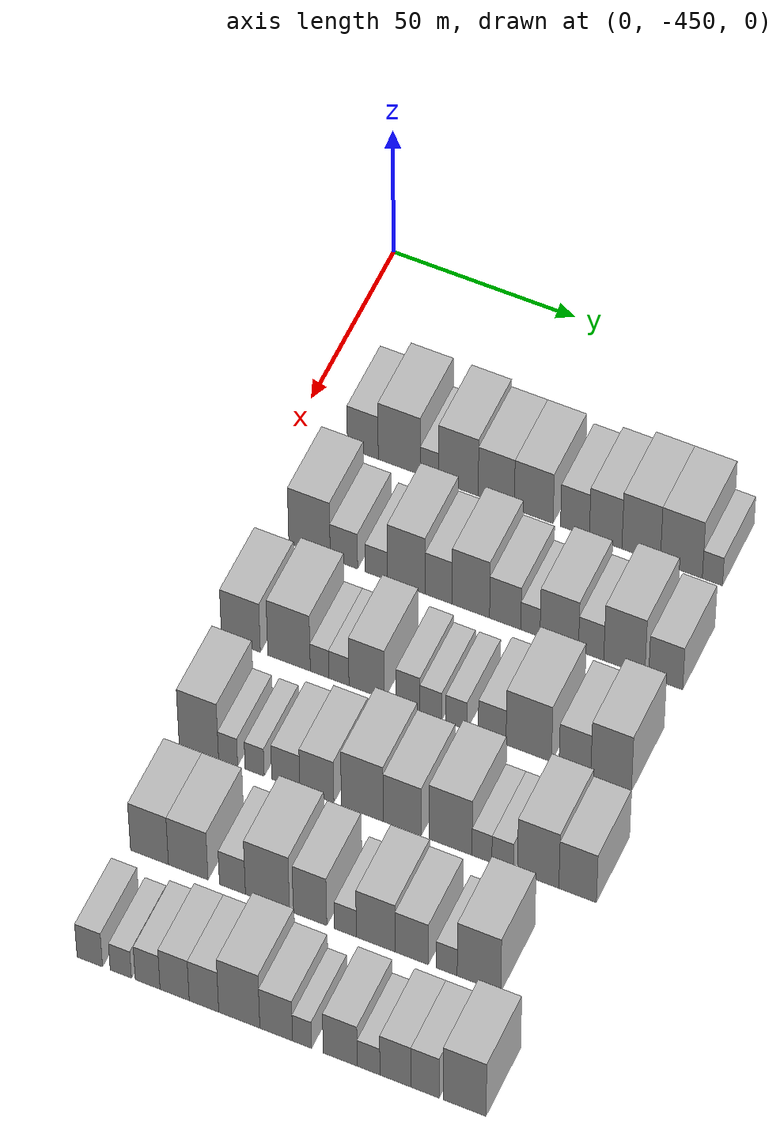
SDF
<sdf version="1.6">
 <world name="default">
  <model name="building_11">
   <static>1</static>
   <pose>50.0000 -431.3317 0 0.000000 0.000000 0.000000</pose>
   <link name="link">
    <pose>0 0 9.00 0 0 0</pose>
    <collision name="collision"><geometry><box><size>20.0000 8.3776 18.0000</size></box></geometry></collision>
    <visual name="visual">
     <cast_shadows>0</cast_shadows>
     <geometry><box><size>20.0000 8.3776 18.0000</size></box></geometry>
     <material>
      <script>
       <uri>model://HANNAS_wall/materials/scripts</uri>
       <uri>model://HANNAS_wall/materials/textures</uri>
       <name>vrc/HANNAS_wall</name>
      </script>
     </material>
    </visual>
   </link>
  </model>
  <model name="building_12">
   <static>1</static>
   <pose>50.0000 -421.4305 0 0.000000 0.000000 0.000000</pose>
   <link name="link">
    <pose>0 0 12.00 0 0 0</pose>
    <collision name="collision"><geometry><box><size>20.0000 11.4246 24.0000</size></box></geometry></collision>
    <visual name="visual">
     <cast_shadows>0</cast_shadows>
     <geometry><box><size>20.0000 11.4246 24.0000</size></box></geometry>
     <material>
      <script>
       <uri>model://HANNAS_wall/materials/scripts</uri>
       <uri>model://HANNAS_wall/materials/textures</uri>
       <name>vrc/HANNAS_wall</name>
      </script>
     </material>
    </visual>
   </link>
  </model>
  <model name="building_13">
   <static>1</static>
   <pose>50.0000 -413.2633 0 0.000000 0.000000 0.000000</pose>
   <link name="link">
    <pose>0 0 6.00 0 0 0</pose>
    <collision name="collision"><geometry><box><size>20.0000 4.9098 12.0000</size></box></geometry></collision>
    <visual name="visual">
     <cast_shadows>0</cast_shadows>
     <geometry><box><size>20.0000 4.9098 12.0000</size></box></geometry>
     <material>
      <script>
       <uri>model://HANNAS_wall/materials/scripts</uri>
       <uri>model://HANNAS_wall/materials/textures</uri>
       <name>vrc/HANNAS_wall</name>
      </script>
     </material>
    </visual>
   </link>
  </model>
  <model name="building_14">
   <static>1</static>
   <pose>50.0000 -405.4306 0 0.000000 0.000000 0.000000</pose>
   <link name="link">
    <pose>0 0 12.00 0 0 0</pose>
    <collision name="collision"><geometry><box><size>20.0000 10.7557 24.0000</size></box></geometry></collision>
    <visual name="visual">
     <cast_shadows>0</cast_shadows>
     <geometry><box><size>20.0000 10.7557 24.0000</size></box></geometry>
     <material>
      <script>
       <uri>model://HANNAS_wall/materials/scripts</uri>
       <uri>model://HANNAS_wall/materials/textures</uri>
       <name>vrc/HANNAS_wall</name>
      </script>
     </material>
    </visual>
   </link>
  </model>
  <model name="building_15">
   <static>1</static>
   <pose>50.0000 -395.1952 0 0.000000 0.000000 0.000000</pose>
   <link name="link">
    <pose>0 0 10.50 0 0 0</pose>
    <collision name="collision"><geometry><box><size>20.0000 9.7150 21.0000</size></box></geometry></collision>
    <visual name="visual">
     <cast_shadows>0</cast_shadows>
     <geometry><box><size>20.0000 9.7150 21.0000</size></box></geometry>
     <material>
      <script>
       <uri>model://HANNAS_wall/materials/scripts</uri>
       <uri>model://HANNAS_wall/materials/textures</uri>
       <name>vrc/HANNAS_wall</name>
      </script>
     </material>
    </visual>
   </link>
  </model>
  <model name="building_16">
   <static>1</static>
   <pose>50.0000 -385.1190 0 0.000000 0.000000 0.000000</pose>
   <link name="link">
    <pose>0 0 10.50 0 0 0</pose>
    <collision name="collision"><geometry><box><size>20.0000 10.4373 21.0000</size></box></geometry></collision>
    <visual name="visual">
     <cast_shadows>0</cast_shadows>
     <geometry><box><size>20.0000 10.4373 21.0000</size></box></geometry>
     <material>
      <script>
       <uri>model://HANNAS_wall/materials/scripts</uri>
       <uri>model://HANNAS_wall/materials/textures</uri>
       <name>vrc/HANNAS_wall</name>
      </script>
     </material>
    </visual>
   </link>
  </model>
  <model name="building_17">
   <static>1</static>
   <pose>50.0000 -374.0400 0 0.000000 0.000000 0.000000</pose>
   <link name="link">
    <pose>0 0 9.00 0 0 0</pose>
    <collision name="collision"><geometry><box><size>20.0000 7.7208 18.0000</size></box></geometry></collision>
    <visual name="visual">
     <cast_shadows>0</cast_shadows>
     <geometry><box><size>20.0000 7.7208 18.0000</size></box></geometry>
     <material>
      <script>
       <uri>model://HANNAS_wall/materials/scripts</uri>
       <uri>model://HANNAS_wall/materials/textures</uri>
       <name>vrc/HANNAS_wall</name>
      </script>
     </material>
    </visual>
   </link>
  </model>
  <model name="building_18">
   <static>1</static>
   <pose>50.0000 -365.8259 0 0.000000 0.000000 0.000000</pose>
   <link name="link">
    <pose>0 0 10.50 0 0 0</pose>
    <collision name="collision"><geometry><box><size>20.0000 8.7074 21.0000</size></box></geometry></collision>
    <visual name="visual">
     <cast_shadows>0</cast_shadows>
     <geometry><box><size>20.0000 8.7074 21.0000</size></box></geometry>
     <material>
      <script>
       <uri>model://HANNAS_wall/materials/scripts</uri>
       <uri>model://HANNAS_wall/materials/textures</uri>
       <name>vrc/HANNAS_wall</name>
      </script>
     </material>
    </visual>
   </link>
  </model>
  <model name="building_19">
   <static>1</static>
   <pose>50.0000 -356.3437 0 0.000000 0.000000 0.000000</pose>
   <link name="link">
    <pose>0 0 12.00 0 0 0</pose>
    <collision name="collision"><geometry><box><size>20.0000 10.2568 24.0000</size></box></geometry></collision>
    <visual name="visual">
     <cast_shadows>0</cast_shadows>
     <geometry><box><size>20.0000 10.2568 24.0000</size></box></geometry>
     <material>
      <script>
       <uri>model://HANNAS_wall/materials/scripts</uri>
       <uri>model://HANNAS_wall/materials/textures</uri>
       <name>vrc/HANNAS_wall</name>
      </script>
     </material>
    </visual>
   </link>
  </model>
  <model name="building_20">
   <static>1</static>
   <pose>50.0000 -345.6177 0 0.000000 0.000000 0.000000</pose>
   <link name="link">
    <pose>0 0 12.00 0 0 0</pose>
    <collision name="collision"><geometry><box><size>20.0000 11.1952 24.0000</size></box></geometry></collision>
    <visual name="visual">
     <cast_shadows>0</cast_shadows>
     <geometry><box><size>20.0000 11.1952 24.0000</size></box></geometry>
     <material>
      <script>
       <uri>model://HANNAS_wall/materials/scripts</uri>
       <uri>model://HANNAS_wall/materials/textures</uri>
       <name>vrc/HANNAS_wall</name>
      </script>
     </material>
    </visual>
   </link>
  </model>
  <model name="building_21">
   <static>1</static>
   <pose>50.0000 -337.3342 0 0.000000 0.000000 0.000000</pose>
   <link name="link">
    <pose>0 0 6.00 0 0 0</pose>
    <collision name="collision"><geometry><box><size>20.0000 5.3718 12.0000</size></box></geometry></collision>
    <visual name="visual">
     <cast_shadows>0</cast_shadows>
     <geometry><box><size>20.0000 5.3718 12.0000</size></box></geometry>
     <material>
      <script>
       <uri>model://HANNAS_wall/materials/scripts</uri>
       <uri>model://HANNAS_wall/materials/textures</uri>
       <name>vrc/HANNAS_wall</name>
      </script>
     </material>
    </visual>
   </link>
  </model>
  <model name="building_129">
   <static>1</static>
   <pose>82.0000 -431.1673 0 0.000000 0.000000 0.000000</pose>
   <link name="link">
    <pose>0 0 12.00 0 0 0</pose>
    <collision name="collision"><geometry><box><size>20.0000 11.1755 24.0000</size></box></geometry></collision>
    <visual name="visual">
     <cast_shadows>0</cast_shadows>
     <geometry><box><size>20.0000 11.1755 24.0000</size></box></geometry>
     <material>
      <script>
       <uri>model://HANNAS_wall/materials/scripts</uri>
       <uri>model://HANNAS_wall/materials/textures</uri>
       <name>vrc/HANNAS_wall</name>
      </script>
     </material>
    </visual>
   </link>
  </model>
  <model name="building_130">
   <static>1</static>
   <pose>82.0000 -421.8886 0 0.000000 0.000000 0.000000</pose>
   <link name="link">
    <pose>0 0 7.50 0 0 0</pose>
    <collision name="collision"><geometry><box><size>20.0000 7.3818 15.0000</size></box></geometry></collision>
    <visual name="visual">
     <cast_shadows>0</cast_shadows>
     <geometry><box><size>20.0000 7.3818 15.0000</size></box></geometry>
     <material>
      <script>
       <uri>model://HANNAS_wall/materials/scripts</uri>
       <uri>model://HANNAS_wall/materials/textures</uri>
       <name>vrc/HANNAS_wall</name>
      </script>
     </material>
    </visual>
   </link>
  </model>
  <model name="building_131">
   <static>1</static>
   <pose>82.0000 -413.1989 0 0.000000 0.000000 0.000000</pose>
   <link name="link">
    <pose>0 0 6.00 0 0 0</pose>
    <collision name="collision"><geometry><box><size>20.0000 5.9976 12.0000</size></box></geometry></collision>
    <visual name="visual">
     <cast_shadows>0</cast_shadows>
     <geometry><box><size>20.0000 5.9976 12.0000</size></box></geometry>
     <material>
      <script>
       <uri>model://HANNAS_wall/materials/scripts</uri>
       <uri>model://HANNAS_wall/materials/textures</uri>
       <name>vrc/HANNAS_wall</name>
      </script>
     </material>
    </visual>
   </link>
  </model>
  <model name="building_132">
   <static>1</static>
   <pose>82.0000 -405.1424 0 0.000000 0.000000 0.000000</pose>
   <link name="link">
    <pose>0 0 12.00 0 0 0</pose>
    <collision name="collision"><geometry><box><size>20.0000 10.1153 24.0000</size></box></geometry></collision>
    <visual name="visual">
     <cast_shadows>0</cast_shadows>
     <geometry><box><size>20.0000 10.1153 24.0000</size></box></geometry>
     <material>
      <script>
       <uri>model://HANNAS_wall/materials/scripts</uri>
       <uri>model://HANNAS_wall/materials/textures</uri>
       <name>vrc/HANNAS_wall</name>
      </script>
     </material>
    </visual>
   </link>
  </model>
  <model name="building_133">
   <static>1</static>
   <pose>82.0000 -396.4751 0 0.000000 0.000000 0.000000</pose>
   <link name="link">
    <pose>0 0 9.00 0 0 0</pose>
    <collision name="collision"><geometry><box><size>20.0000 7.2193 18.0000</size></box></geometry></collision>
    <visual name="visual">
     <cast_shadows>0</cast_shadows>
     <geometry><box><size>20.0000 7.2193 18.0000</size></box></geometry>
     <material>
      <script>
       <uri>model://HANNAS_wall/materials/scripts</uri>
       <uri>model://HANNAS_wall/materials/textures</uri>
       <name>vrc/HANNAS_wall</name>
      </script>
     </material>
    </visual>
   </link>
  </model>
  <model name="building_134">
   <static>1</static>
   <pose>82.0000 -387.8564 0 0.000000 0.000000 0.000000</pose>
   <link name="link">
    <pose>0 0 12.00 0 0 0</pose>
    <collision name="collision"><geometry><box><size>20.0000 10.0181 24.0000</size></box></geometry></collision>
    <visual name="visual">
     <cast_shadows>0</cast_shadows>
     <geometry><box><size>20.0000 10.0181 24.0000</size></box></geometry>
     <material>
      <script>
       <uri>model://HANNAS_wall/materials/scripts</uri>
       <uri>model://HANNAS_wall/materials/textures</uri>
       <name>vrc/HANNAS_wall</name>
      </script>
     </material>
    </visual>
   </link>
  </model>
  <model name="building_135">
   <static>1</static>
   <pose>82.0000 -378.6909 0 0.000000 0.000000 0.000000</pose>
   <link name="link">
    <pose>0 0 9.00 0 0 0</pose>
    <collision name="collision"><geometry><box><size>20.0000 8.3130 18.0000</size></box></geometry></collision>
    <visual name="visual">
     <cast_shadows>0</cast_shadows>
     <geometry><box><size>20.0000 8.3130 18.0000</size></box></geometry>
     <material>
      <script>
       <uri>model://HANNAS_wall/materials/scripts</uri>
       <uri>model://HANNAS_wall/materials/textures</uri>
       <name>vrc/HANNAS_wall</name>
      </script>
     </material>
    </visual>
   </link>
  </model>
  <model name="building_136">
   <static>1</static>
   <pose>82.0000 -371.9829 0 0.000000 0.000000 0.000000</pose>
   <link name="link">
    <pose>0 0 6.00 0 0 0</pose>
    <collision name="collision"><geometry><box><size>20.0000 5.1029 12.0000</size></box></geometry></collision>
    <visual name="visual">
     <cast_shadows>0</cast_shadows>
     <geometry><box><size>20.0000 5.1029 12.0000</size></box></geometry>
     <material>
      <script>
       <uri>model://HANNAS_wall/materials/scripts</uri>
       <uri>model://HANNAS_wall/materials/textures</uri>
       <name>vrc/HANNAS_wall</name>
      </script>
     </material>
    </visual>
   </link>
  </model>
  <model name="building_137">
   <static>1</static>
   <pose>82.0000 -364.3325 0 0.000000 0.000000 0.000000</pose>
   <link name="link">
    <pose>0 0 10.50 0 0 0</pose>
    <collision name="collision"><geometry><box><size>20.0000 10.1978 21.0000</size></box></geometry></collision>
    <visual name="visual">
     <cast_shadows>0</cast_shadows>
     <geometry><box><size>20.0000 10.1978 21.0000</size></box></geometry>
     <material>
      <script>
       <uri>model://HANNAS_wall/materials/scripts</uri>
       <uri>model://HANNAS_wall/materials/textures</uri>
       <name>vrc/HANNAS_wall</name>
      </script>
     </material>
    </visual>
   </link>
  </model>
  <model name="building_138">
   <static>1</static>
   <pose>82.0000 -355.8788 0 0.000000 0.000000 0.000000</pose>
   <link name="link">
    <pose>0 0 7.50 0 0 0</pose>
    <collision name="collision"><geometry><box><size>20.0000 6.7097 15.0000</size></box></geometry></collision>
    <visual name="visual">
     <cast_shadows>0</cast_shadows>
     <geometry><box><size>20.0000 6.7097 15.0000</size></box></geometry>
     <material>
      <script>
       <uri>model://HANNAS_wall/materials/scripts</uri>
       <uri>model://HANNAS_wall/materials/textures</uri>
       <name>vrc/HANNAS_wall</name>
      </script>
     </material>
    </visual>
   </link>
  </model>
  <model name="building_139">
   <static>1</static>
   <pose>82.0000 -347.0955 0 0.000000 0.000000 0.000000</pose>
   <link name="link">
    <pose>0 0 12.00 0 0 0</pose>
    <collision name="collision"><geometry><box><size>20.0000 10.8568 24.0000</size></box></geometry></collision>
    <visual name="visual">
     <cast_shadows>0</cast_shadows>
     <geometry><box><size>20.0000 10.8568 24.0000</size></box></geometry>
     <material>
      <script>
       <uri>model://HANNAS_wall/materials/scripts</uri>
       <uri>model://HANNAS_wall/materials/textures</uri>
       <name>vrc/HANNAS_wall</name>
      </script>
     </material>
    </visual>
   </link>
  </model>
  <model name="building_140">
   <static>1</static>
   <pose>82.0000 -336.1716 0 0.000000 0.000000 0.000000</pose>
   <link name="link">
    <pose>0 0 9.00 0 0 0</pose>
    <collision name="collision"><geometry><box><size>20.0000 8.9911 18.0000</size></box></geometry></collision>
    <visual name="visual">
     <cast_shadows>0</cast_shadows>
     <geometry><box><size>20.0000 8.9911 18.0000</size></box></geometry>
     <material>
      <script>
       <uri>model://HANNAS_wall/materials/scripts</uri>
       <uri>model://HANNAS_wall/materials/textures</uri>
       <name>vrc/HANNAS_wall</name>
      </script>
     </material>
    </visual>
   </link>
  </model>
  <model name="building_250">
   <static>1</static>
   <pose>114.0000 -434.8433 0 0.000000 0.000000 0.000000</pose>
   <link name="link">
    <pose>0 0 10.50 0 0 0</pose>
    <collision name="collision"><geometry><box><size>20.0000 10.4191 21.0000</size></box></geometry></collision>
    <visual name="visual">
     <cast_shadows>0</cast_shadows>
     <geometry><box><size>20.0000 10.4191 21.0000</size></box></geometry>
     <material>
      <script>
       <uri>model://HANNAS_wall/materials/scripts</uri>
       <uri>model://HANNAS_wall/materials/textures</uri>
       <name>vrc/HANNAS_wall</name>
      </script>
     </material>
    </visual>
   </link>
  </model>
  <model name="building_251">
   <static>1</static>
   <pose>114.0000 -421.9444 0 0.000000 0.000000 0.000000</pose>
   <link name="link">
    <pose>0 0 12.00 0 0 0</pose>
    <collision name="collision"><geometry><box><size>20.0000 11.3788 24.0000</size></box></geometry></collision>
    <visual name="visual">
     <cast_shadows>0</cast_shadows>
     <geometry><box><size>20.0000 11.3788 24.0000</size></box></geometry>
     <material>
      <script>
       <uri>model://HANNAS_wall/materials/scripts</uri>
       <uri>model://HANNAS_wall/materials/textures</uri>
       <name>vrc/HANNAS_wall</name>
      </script>
     </material>
    </visual>
   </link>
  </model>
  <model name="building_252">
   <static>1</static>
   <pose>114.0000 -413.7917 0 0.000000 0.000000 0.000000</pose>
   <link name="link">
    <pose>0 0 6.00 0 0 0</pose>
    <collision name="collision"><geometry><box><size>20.0000 4.9266 12.0000</size></box></geometry></collision>
    <visual name="visual">
     <cast_shadows>0</cast_shadows>
     <geometry><box><size>20.0000 4.9266 12.0000</size></box></geometry>
     <material>
      <script>
       <uri>model://HANNAS_wall/materials/scripts</uri>
       <uri>model://HANNAS_wall/materials/textures</uri>
       <name>vrc/HANNAS_wall</name>
      </script>
     </material>
    </visual>
   </link>
  </model>
  <model name="building_253">
   <static>1</static>
   <pose>114.0000 -408.6428 0 0.000000 0.000000 0.000000</pose>
   <link name="link">
    <pose>0 0 6.00 0 0 0</pose>
    <collision name="collision"><geometry><box><size>20.0000 5.3714 12.0000</size></box></geometry></collision>
    <visual name="visual">
     <cast_shadows>0</cast_shadows>
     <geometry><box><size>20.0000 5.3714 12.0000</size></box></geometry>
     <material>
      <script>
       <uri>model://HANNAS_wall/materials/scripts</uri>
       <uri>model://HANNAS_wall/materials/textures</uri>
       <name>vrc/HANNAS_wall</name>
      </script>
     </material>
    </visual>
   </link>
  </model>
  <model name="building_254">
   <static>1</static>
   <pose>114.0000 -401.2324 0 0.000000 0.000000 0.000000</pose>
   <link name="link">
    <pose>0 0 10.50 0 0 0</pose>
    <collision name="collision"><geometry><box><size>20.0000 9.4492 21.0000</size></box></geometry></collision>
    <visual name="visual">
     <cast_shadows>0</cast_shadows>
     <geometry><box><size>20.0000 9.4492 21.0000</size></box></geometry>
     <material>
      <script>
       <uri>model://HANNAS_wall/materials/scripts</uri>
       <uri>model://HANNAS_wall/materials/textures</uri>
       <name>vrc/HANNAS_wall</name>
      </script>
     </material>
    </visual>
   </link>
  </model>
  <model name="building_255">
   <static>1</static>
   <pose>114.0000 -390.2980 0 0.000000 0.000000 0.000000</pose>
   <link name="link">
    <pose>0 0 7.50 0 0 0</pose>
    <collision name="collision"><geometry><box><size>20.0000 6.4197 15.0000</size></box></geometry></collision>
    <visual name="visual">
     <cast_shadows>0</cast_shadows>
     <geometry><box><size>20.0000 6.4197 15.0000</size></box></geometry>
     <material>
      <script>
       <uri>model://HANNAS_wall/materials/scripts</uri>
       <uri>model://HANNAS_wall/materials/textures</uri>
       <name>vrc/HANNAS_wall</name>
      </script>
     </material>
    </visual>
   </link>
  </model>
  <model name="building_256">
   <static>1</static>
   <pose>114.0000 -384.2044 0 0.000000 0.000000 0.000000</pose>
   <link name="link">
    <pose>0 0 6.00 0 0 0</pose>
    <collision name="collision"><geometry><box><size>20.0000 5.7673 12.0000</size></box></geometry></collision>
    <visual name="visual">
     <cast_shadows>0</cast_shadows>
     <geometry><box><size>20.0000 5.7673 12.0000</size></box></geometry>
     <material>
      <script>
       <uri>model://HANNAS_wall/materials/scripts</uri>
       <uri>model://HANNAS_wall/materials/textures</uri>
       <name>vrc/HANNAS_wall</name>
      </script>
     </material>
    </visual>
   </link>
  </model>
  <model name="building_257">
   <static>1</static>
   <pose>114.0000 -377.4975 0 0.000000 0.000000 0.000000</pose>
   <link name="link">
    <pose>0 0 6.00 0 0 0</pose>
    <collision name="collision"><geometry><box><size>20.0000 5.6467 12.0000</size></box></geometry></collision>
    <visual name="visual">
     <cast_shadows>0</cast_shadows>
     <geometry><box><size>20.0000 5.6467 12.0000</size></box></geometry>
     <material>
      <script>
       <uri>model://HANNAS_wall/materials/scripts</uri>
       <uri>model://HANNAS_wall/materials/textures</uri>
       <name>vrc/HANNAS_wall</name>
      </script>
     </material>
    </visual>
   </link>
  </model>
  <model name="building_258">
   <static>1</static>
   <pose>114.0000 -368.0290 0 0.000000 0.000000 0.000000</pose>
   <link name="link">
    <pose>0 0 7.50 0 0 0</pose>
    <collision name="collision"><geometry><box><size>20.0000 7.2903 15.0000</size></box></geometry></collision>
    <visual name="visual">
     <cast_shadows>0</cast_shadows>
     <geometry><box><size>20.0000 7.2903 15.0000</size></box></geometry>
     <material>
      <script>
       <uri>model://HANNAS_wall/materials/scripts</uri>
       <uri>model://HANNAS_wall/materials/textures</uri>
       <name>vrc/HANNAS_wall</name>
      </script>
     </material>
    </visual>
   </link>
  </model>
  <model name="building_259">
   <static>1</static>
   <pose>114.0000 -358.4111 0 0.000000 0.000000 0.000000</pose>
   <link name="link">
    <pose>0 0 12.00 0 0 0</pose>
    <collision name="collision"><geometry><box><size>20.0000 11.9455 24.0000</size></box></geometry></collision>
    <visual name="visual">
     <cast_shadows>0</cast_shadows>
     <geometry><box><size>20.0000 11.9455 24.0000</size></box></geometry>
     <material>
      <script>
       <uri>model://HANNAS_wall/materials/scripts</uri>
       <uri>model://HANNAS_wall/materials/textures</uri>
       <name>vrc/HANNAS_wall</name>
      </script>
     </material>
    </visual>
   </link>
  </model>
  <model name="building_260">
   <static>1</static>
   <pose>114.0000 -346.2951 0 0.000000 0.000000 0.000000</pose>
   <link name="link">
    <pose>0 0 9.00 0 0 0</pose>
    <collision name="collision"><geometry><box><size>20.0000 8.2866 18.0000</size></box></geometry></collision>
    <visual name="visual">
     <cast_shadows>0</cast_shadows>
     <geometry><box><size>20.0000 8.2866 18.0000</size></box></geometry>
     <material>
      <script>
       <uri>model://HANNAS_wall/materials/scripts</uri>
       <uri>model://HANNAS_wall/materials/textures</uri>
       <name>vrc/HANNAS_wall</name>
      </script>
     </material>
    </visual>
   </link>
  </model>
  <model name="building_261">
   <static>1</static>
   <pose>114.0000 -336.8312 0 0.000000 0.000000 0.000000</pose>
   <link name="link">
    <pose>0 0 12.00 0 0 0</pose>
    <collision name="collision"><geometry><box><size>20.0000 10.6411 24.0000</size></box></geometry></collision>
    <visual name="visual">
     <cast_shadows>0</cast_shadows>
     <geometry><box><size>20.0000 10.6411 24.0000</size></box></geometry>
     <material>
      <script>
       <uri>model://HANNAS_wall/materials/scripts</uri>
       <uri>model://HANNAS_wall/materials/textures</uri>
       <name>vrc/HANNAS_wall</name>
      </script>
     </material>
    </visual>
   </link>
  </model>
  <model name="building_368">
   <static>1</static>
   <pose>146.0000 -431.1203 0 0.000000 0.000000 0.000000</pose>
   <link name="link">
    <pose>0 0 12.00 0 0 0</pose>
    <collision name="collision"><geometry><box><size>20.0000 10.4789 24.0000</size></box></geometry></collision>
    <visual name="visual">
     <cast_shadows>0</cast_shadows>
     <geometry><box><size>20.0000 10.4789 24.0000</size></box></geometry>
     <material>
      <script>
       <uri>model://HANNAS_wall/materials/scripts</uri>
       <uri>model://HANNAS_wall/materials/textures</uri>
       <name>vrc/HANNAS_wall</name>
      </script>
     </material>
    </visual>
   </link>
  </model>
  <model name="building_369">
   <static>1</static>
   <pose>146.0000 -423.3428 0 0.000000 0.000000 0.000000</pose>
   <link name="link">
    <pose>0 0 6.00 0 0 0</pose>
    <collision name="collision"><geometry><box><size>20.0000 5.0762 12.0000</size></box></geometry></collision>
    <visual name="visual">
     <cast_shadows>0</cast_shadows>
     <geometry><box><size>20.0000 5.0762 12.0000</size></box></geometry>
     <material>
      <script>
       <uri>model://HANNAS_wall/materials/scripts</uri>
       <uri>model://HANNAS_wall/materials/textures</uri>
       <name>vrc/HANNAS_wall</name>
      </script>
     </material>
    </visual>
   </link>
  </model>
  <model name="building_370">
   <static>1</static>
   <pose>146.0000 -416.2782 0 0.000000 0.000000 0.000000</pose>
   <link name="link">
    <pose>0 0 6.00 0 0 0</pose>
    <collision name="collision"><geometry><box><size>20.0000 5.0529 12.0000</size></box></geometry></collision>
    <visual name="visual">
     <cast_shadows>0</cast_shadows>
     <geometry><box><size>20.0000 5.0529 12.0000</size></box></geometry>
     <material>
      <script>
       <uri>model://HANNAS_wall/materials/scripts</uri>
       <uri>model://HANNAS_wall/materials/textures</uri>
       <name>vrc/HANNAS_wall</name>
      </script>
     </material>
    </visual>
   </link>
  </model>
  <model name="building_371">
   <static>1</static>
   <pose>146.0000 -408.0304 0 0.000000 0.000000 0.000000</pose>
   <link name="link">
    <pose>0 0 7.50 0 0 0</pose>
    <collision name="collision"><geometry><box><size>20.0000 7.4427 15.0000</size></box></geometry></collision>
    <visual name="visual">
     <cast_shadows>0</cast_shadows>
     <geometry><box><size>20.0000 7.4427 15.0000</size></box></geometry>
     <material>
      <script>
       <uri>model://HANNAS_wall/materials/scripts</uri>
       <uri>model://HANNAS_wall/materials/textures</uri>
       <name>vrc/HANNAS_wall</name>
      </script>
     </material>
    </visual>
   </link>
  </model>
  <model name="building_372">
   <static>1</static>
   <pose>146.0000 -399.8318 0 0.000000 0.000000 0.000000</pose>
   <link name="link">
    <pose>0 0 9.00 0 0 0</pose>
    <collision name="collision"><geometry><box><size>20.0000 8.9545 18.0000</size></box></geometry></collision>
    <visual name="visual">
     <cast_shadows>0</cast_shadows>
     <geometry><box><size>20.0000 8.9545 18.0000</size></box></geometry>
     <material>
      <script>
       <uri>model://HANNAS_wall/materials/scripts</uri>
       <uri>model://HANNAS_wall/materials/textures</uri>
       <name>vrc/HANNAS_wall</name>
      </script>
     </material>
    </visual>
   </link>
  </model>
  <model name="building_373">
   <static>1</static>
   <pose>146.0000 -387.8559 0 0.000000 0.000000 0.000000</pose>
   <link name="link">
    <pose>0 0 12.00 0 0 0</pose>
    <collision name="collision"><geometry><box><size>20.0000 10.9972 24.0000</size></box></geometry></collision>
    <visual name="visual">
     <cast_shadows>0</cast_shadows>
     <geometry><box><size>20.0000 10.9972 24.0000</size></box></geometry>
     <material>
      <script>
       <uri>model://HANNAS_wall/materials/scripts</uri>
       <uri>model://HANNAS_wall/materials/textures</uri>
       <name>vrc/HANNAS_wall</name>
      </script>
     </material>
    </visual>
   </link>
  </model>
  <model name="building_374">
   <static>1</static>
   <pose>146.0000 -377.3879 0 0.000000 0.000000 0.000000</pose>
   <link name="link">
    <pose>0 0 10.50 0 0 0</pose>
    <collision name="collision"><geometry><box><size>20.0000 9.9389 21.0000</size></box></geometry></collision>
    <visual name="visual">
     <cast_shadows>0</cast_shadows>
     <geometry><box><size>20.0000 9.9389 21.0000</size></box></geometry>
     <material>
      <script>
       <uri>model://HANNAS_wall/materials/scripts</uri>
       <uri>model://HANNAS_wall/materials/textures</uri>
       <name>vrc/HANNAS_wall</name>
      </script>
     </material>
    </visual>
   </link>
  </model>
  <model name="building_375">
   <static>1</static>
   <pose>146.0000 -364.7798 0 0.000000 0.000000 0.000000</pose>
   <link name="link">
    <pose>0 0 12.00 0 0 0</pose>
    <collision name="collision"><geometry><box><size>20.0000 11.2772 24.0000</size></box></geometry></collision>
    <visual name="visual">
     <cast_shadows>0</cast_shadows>
     <geometry><box><size>20.0000 11.2772 24.0000</size></box></geometry>
     <material>
      <script>
       <uri>model://HANNAS_wall/materials/scripts</uri>
       <uri>model://HANNAS_wall/materials/textures</uri>
       <name>vrc/HANNAS_wall</name>
      </script>
     </material>
    </visual>
   </link>
  </model>
  <model name="building_376">
   <static>1</static>
   <pose>146.0000 -356.5558 0 0.000000 0.000000 0.000000</pose>
   <link name="link">
    <pose>0 0 6.00 0 0 0</pose>
    <collision name="collision"><geometry><box><size>20.0000 5.1708 12.0000</size></box></geometry></collision>
    <visual name="visual">
     <cast_shadows>0</cast_shadows>
     <geometry><box><size>20.0000 5.1708 12.0000</size></box></geometry>
     <material>
      <script>
       <uri>model://HANNAS_wall/materials/scripts</uri>
       <uri>model://HANNAS_wall/materials/textures</uri>
       <name>vrc/HANNAS_wall</name>
      </script>
     </material>
    </visual>
   </link>
  </model>
  <model name="building_377">
   <static>1</static>
   <pose>146.0000 -351.1589 0 0.000000 0.000000 0.000000</pose>
   <link name="link">
    <pose>0 0 6.00 0 0 0</pose>
    <collision name="collision"><geometry><box><size>20.0000 5.6230 12.0000</size></box></geometry></collision>
    <visual name="visual">
     <cast_shadows>0</cast_shadows>
     <geometry><box><size>20.0000 5.6230 12.0000</size></box></geometry>
     <material>
      <script>
       <uri>model://HANNAS_wall/materials/scripts</uri>
       <uri>model://HANNAS_wall/materials/textures</uri>
       <name>vrc/HANNAS_wall</name>
      </script>
     </material>
    </visual>
   </link>
  </model>
  <model name="building_378">
   <static>1</static>
   <pose>146.0000 -341.9599 0 0.000000 0.000000 0.000000</pose>
   <link name="link">
    <pose>0 0 12.00 0 0 0</pose>
    <collision name="collision"><geometry><box><size>20.0000 10.7751 24.0000</size></box></geometry></collision>
    <visual name="visual">
     <cast_shadows>0</cast_shadows>
     <geometry><box><size>20.0000 10.7751 24.0000</size></box></geometry>
     <material>
      <script>
       <uri>model://HANNAS_wall/materials/scripts</uri>
       <uri>model://HANNAS_wall/materials/textures</uri>
       <name>vrc/HANNAS_wall</name>
      </script>
     </material>
    </visual>
   </link>
  </model>
  <model name="building_379">
   <static>1</static>
   <pose>146.0000 -331.7042 0 0.000000 0.000000 0.000000</pose>
   <link name="link">
    <pose>0 0 10.50 0 0 0</pose>
    <collision name="collision"><geometry><box><size>20.0000 9.7362 21.0000</size></box></geometry></collision>
    <visual name="visual">
     <cast_shadows>0</cast_shadows>
     <geometry><box><size>20.0000 9.7362 21.0000</size></box></geometry>
     <material>
      <script>
       <uri>model://HANNAS_wall/materials/scripts</uri>
       <uri>model://HANNAS_wall/materials/textures</uri>
       <name>vrc/HANNAS_wall</name>
      </script>
     </material>
    </visual>
   </link>
  </model>
  <model name="building_481">
   <static>1</static>
   <pose>178.0000 -429.0647 0 0.000000 0.000000 0.000000</pose>
   <link name="link">
    <pose>0 0 10.50 0 0 0</pose>
    <collision name="collision"><geometry><box><size>20.0000 10.0021 21.0000</size></box></geometry></collision>
    <visual name="visual">
     <cast_shadows>0</cast_shadows>
     <geometry><box><size>20.0000 10.0021 21.0000</size></box></geometry>
     <material>
      <script>
       <uri>model://HANNAS_wall/materials/scripts</uri>
       <uri>model://HANNAS_wall/materials/textures</uri>
       <name>vrc/HANNAS_wall</name>
      </script>
     </material>
    </visual>
   </link>
  </model>
  <model name="building_482">
   <static>1</static>
   <pose>178.0000 -418.8536 0 0.000000 0.000000 0.000000</pose>
   <link name="link">
    <pose>0 0 10.50 0 0 0</pose>
    <collision name="collision"><geometry><box><size>20.0000 10.4201 21.0000</size></box></geometry></collision>
    <visual name="visual">
     <cast_shadows>0</cast_shadows>
     <geometry><box><size>20.0000 10.4201 21.0000</size></box></geometry>
     <material>
      <script>
       <uri>model://HANNAS_wall/materials/scripts</uri>
       <uri>model://HANNAS_wall/materials/textures</uri>
       <name>vrc/HANNAS_wall</name>
      </script>
     </material>
    </visual>
   </link>
  </model>
  <model name="building_483">
   <static>1</static>
   <pose>178.0000 -407.2378 0 0.000000 0.000000 0.000000</pose>
   <link name="link">
    <pose>0 0 7.50 0 0 0</pose>
    <collision name="collision"><geometry><box><size>20.0000 6.8114 15.0000</size></box></geometry></collision>
    <visual name="visual">
     <cast_shadows>0</cast_shadows>
     <geometry><box><size>20.0000 6.8114 15.0000</size></box></geometry>
     <material>
      <script>
       <uri>model://HANNAS_wall/materials/scripts</uri>
       <uri>model://HANNAS_wall/materials/textures</uri>
       <name>vrc/HANNAS_wall</name>
      </script>
     </material>
    </visual>
   </link>
  </model>
  <model name="building_484">
   <static>1</static>
   <pose>178.0000 -398.0611 0 0.000000 0.000000 0.000000</pose>
   <link name="link">
    <pose>0 0 12.00 0 0 0</pose>
    <collision name="collision"><geometry><box><size>20.0000 11.5420 24.0000</size></box></geometry></collision>
    <visual name="visual">
     <cast_shadows>0</cast_shadows>
     <geometry><box><size>20.0000 11.5420 24.0000</size></box></geometry>
     <material>
      <script>
       <uri>model://HANNAS_wall/materials/scripts</uri>
       <uri>model://HANNAS_wall/materials/textures</uri>
       <name>vrc/HANNAS_wall</name>
      </script>
     </material>
    </visual>
   </link>
  </model>
  <model name="building_485">
   <static>1</static>
   <pose>178.0000 -386.9262 0 0.000000 0.000000 0.000000</pose>
   <link name="link">
    <pose>0 0 10.50 0 0 0</pose>
    <collision name="collision"><geometry><box><size>20.0000 8.7279 21.0000</size></box></geometry></collision>
    <visual name="visual">
     <cast_shadows>0</cast_shadows>
     <geometry><box><size>20.0000 8.7279 21.0000</size></box></geometry>
     <material>
      <script>
       <uri>model://HANNAS_wall/materials/scripts</uri>
       <uri>model://HANNAS_wall/materials/textures</uri>
       <name>vrc/HANNAS_wall</name>
      </script>
     </material>
    </visual>
   </link>
  </model>
  <model name="building_486">
   <static>1</static>
   <pose>178.0000 -377.7135 0 0.000000 0.000000 0.000000</pose>
   <link name="link">
    <pose>0 0 6.00 0 0 0</pose>
    <collision name="collision"><geometry><box><size>20.0000 5.6975 12.0000</size></box></geometry></collision>
    <visual name="visual">
     <cast_shadows>0</cast_shadows>
     <geometry><box><size>20.0000 5.6975 12.0000</size></box></geometry>
     <material>
      <script>
       <uri>model://HANNAS_wall/materials/scripts</uri>
       <uri>model://HANNAS_wall/materials/textures</uri>
       <name>vrc/HANNAS_wall</name>
      </script>
     </material>
    </visual>
   </link>
  </model>
  <model name="building_487">
   <static>1</static>
   <pose>178.0000 -369.8450 0 0.000000 0.000000 0.000000</pose>
   <link name="link">
    <pose>0 0 10.50 0 0 0</pose>
    <collision name="collision"><geometry><box><size>20.0000 10.0393 21.0000</size></box></geometry></collision>
    <visual name="visual">
     <cast_shadows>0</cast_shadows>
     <geometry><box><size>20.0000 10.0393 21.0000</size></box></geometry>
     <material>
      <script>
       <uri>model://HANNAS_wall/materials/scripts</uri>
       <uri>model://HANNAS_wall/materials/textures</uri>
       <name>vrc/HANNAS_wall</name>
      </script>
     </material>
    </visual>
   </link>
  </model>
  <model name="building_488">
   <static>1</static>
   <pose>178.0000 -360.5117 0 0.000000 0.000000 0.000000</pose>
   <link name="link">
    <pose>0 0 9.00 0 0 0</pose>
    <collision name="collision"><geometry><box><size>20.0000 8.6274 18.0000</size></box></geometry></collision>
    <visual name="visual">
     <cast_shadows>0</cast_shadows>
     <geometry><box><size>20.0000 8.6274 18.0000</size></box></geometry>
     <material>
      <script>
       <uri>model://HANNAS_wall/materials/scripts</uri>
       <uri>model://HANNAS_wall/materials/textures</uri>
       <name>vrc/HANNAS_wall</name>
      </script>
     </material>
    </visual>
   </link>
  </model>
  <model name="building_489">
   <static>1</static>
   <pose>178.0000 -351.4812 0 0.000000 0.000000 0.000000</pose>
   <link name="link">
    <pose>0 0 6.00 0 0 0</pose>
    <collision name="collision"><geometry><box><size>20.0000 5.4336 12.0000</size></box></geometry></collision>
    <visual name="visual">
     <cast_shadows>0</cast_shadows>
     <geometry><box><size>20.0000 5.4336 12.0000</size></box></geometry>
     <material>
      <script>
       <uri>model://HANNAS_wall/materials/scripts</uri>
       <uri>model://HANNAS_wall/materials/textures</uri>
       <name>vrc/HANNAS_wall</name>
      </script>
     </material>
    </visual>
   </link>
  </model>
  <model name="building_490">
   <static>1</static>
   <pose>178.0000 -343.1541 0 0.000000 0.000000 0.000000</pose>
   <link name="link">
    <pose>0 0 12.00 0 0 0</pose>
    <collision name="collision"><geometry><box><size>20.0000 11.2204 24.0000</size></box></geometry></collision>
    <visual name="visual">
     <cast_shadows>0</cast_shadows>
     <geometry><box><size>20.0000 11.2204 24.0000</size></box></geometry>
     <material>
      <script>
       <uri>model://HANNAS_wall/materials/scripts</uri>
       <uri>model://HANNAS_wall/materials/textures</uri>
       <name>vrc/HANNAS_wall</name>
      </script>
     </material>
    </visual>
   </link>
  </model>
  <model name="building_601">
   <static>1</static>
   <pose>210.0000 -429.4696 0 0.000000 0.000000 0.000000</pose>
   <link name="link">
    <pose>0 0 7.50 0 0 0</pose>
    <collision name="collision"><geometry><box><size>20.0000 6.6581 15.0000</size></box></geometry></collision>
    <visual name="visual">
     <cast_shadows>0</cast_shadows>
     <geometry><box><size>20.0000 6.6581 15.0000</size></box></geometry>
     <material>
      <script>
       <uri>model://HANNAS_wall/materials/scripts</uri>
       <uri>model://HANNAS_wall/materials/textures</uri>
       <name>vrc/HANNAS_wall</name>
      </script>
     </material>
    </visual>
   </link>
  </model>
  <model name="building_602">
   <static>1</static>
   <pose>210.0000 -421.3616 0 0.000000 0.000000 0.000000</pose>
   <link name="link">
    <pose>0 0 6.00 0 0 0</pose>
    <collision name="collision"><geometry><box><size>20.0000 5.5580 12.0000</size></box></geometry></collision>
    <visual name="visual">
     <cast_shadows>0</cast_shadows>
     <geometry><box><size>20.0000 5.5580 12.0000</size></box></geometry>
     <material>
      <script>
       <uri>model://HANNAS_wall/materials/scripts</uri>
       <uri>model://HANNAS_wall/materials/textures</uri>
       <name>vrc/HANNAS_wall</name>
      </script>
     </material>
    </visual>
   </link>
  </model>
  <model name="building_603">
   <static>1</static>
   <pose>210.0000 -414.3488 0 0.000000 0.000000 0.000000</pose>
   <link name="link">
    <pose>0 0 7.50 0 0 0</pose>
    <collision name="collision"><geometry><box><size>20.0000 6.4676 15.0000</size></box></geometry></collision>
    <visual name="visual">
     <cast_shadows>0</cast_shadows>
     <geometry><box><size>20.0000 6.4676 15.0000</size></box></geometry>
     <material>
      <script>
       <uri>model://HANNAS_wall/materials/scripts</uri>
       <uri>model://HANNAS_wall/materials/textures</uri>
       <name>vrc/HANNAS_wall</name>
      </script>
     </material>
    </visual>
   </link>
  </model>
  <model name="building_604">
   <static>1</static>
   <pose>210.0000 -407.3226 0 0.000000 0.000000 0.000000</pose>
   <link name="link">
    <pose>0 0 9.00 0 0 0</pose>
    <collision name="collision"><geometry><box><size>20.0000 7.5847 18.0000</size></box></geometry></collision>
    <visual name="visual">
     <cast_shadows>0</cast_shadows>
     <geometry><box><size>20.0000 7.5847 18.0000</size></box></geometry>
     <material>
      <script>
       <uri>model://HANNAS_wall/materials/scripts</uri>
       <uri>model://HANNAS_wall/materials/textures</uri>
       <name>vrc/HANNAS_wall</name>
      </script>
     </material>
    </visual>
   </link>
  </model>
  <model name="building_605">
   <static>1</static>
   <pose>210.0000 -399.6981 0 0.000000 0.000000 0.000000</pose>
   <link name="link">
    <pose>0 0 9.00 0 0 0</pose>
    <collision name="collision"><geometry><box><size>20.0000 7.6643 18.0000</size></box></geometry></collision>
    <visual name="visual">
     <cast_shadows>0</cast_shadows>
     <geometry><box><size>20.0000 7.6643 18.0000</size></box></geometry>
     <material>
      <script>
       <uri>model://HANNAS_wall/materials/scripts</uri>
       <uri>model://HANNAS_wall/materials/textures</uri>
       <name>vrc/HANNAS_wall</name>
      </script>
     </material>
    </visual>
   </link>
  </model>
  <model name="building_606">
   <static>1</static>
   <pose>210.0000 -390.5362 0 0.000000 0.000000 0.000000</pose>
   <link name="link">
    <pose>0 0 12.00 0 0 0</pose>
    <collision name="collision"><geometry><box><size>20.0000 10.6596 24.0000</size></box></geometry></collision>
    <visual name="visual">
     <cast_shadows>0</cast_shadows>
     <geometry><box><size>20.0000 10.6596 24.0000</size></box></geometry>
     <material>
      <script>
       <uri>model://HANNAS_wall/materials/scripts</uri>
       <uri>model://HANNAS_wall/materials/textures</uri>
       <name>vrc/HANNAS_wall</name>
      </script>
     </material>
    </visual>
   </link>
  </model>
  <model name="building_607">
   <static>1</static>
   <pose>210.0000 -380.9711 0 0.000000 0.000000 0.000000</pose>
   <link name="link">
    <pose>0 0 9.00 0 0 0</pose>
    <collision name="collision"><geometry><box><size>20.0000 8.4706 18.0000</size></box></geometry></collision>
    <visual name="visual">
     <cast_shadows>0</cast_shadows>
     <geometry><box><size>20.0000 8.4706 18.0000</size></box></geometry>
     <material>
      <script>
       <uri>model://HANNAS_wall/materials/scripts</uri>
       <uri>model://HANNAS_wall/materials/textures</uri>
       <name>vrc/HANNAS_wall</name>
      </script>
     </material>
    </visual>
   </link>
  </model>
  <model name="building_608">
   <static>1</static>
   <pose>210.0000 -374.2873 0 0.000000 0.000000 0.000000</pose>
   <link name="link">
    <pose>0 0 6.00 0 0 0</pose>
    <collision name="collision"><geometry><box><size>20.0000 4.8971 12.0000</size></box></geometry></collision>
    <visual name="visual">
     <cast_shadows>0</cast_shadows>
     <geometry><box><size>20.0000 4.8971 12.0000</size></box></geometry>
     <material>
      <script>
       <uri>model://HANNAS_wall/materials/scripts</uri>
       <uri>model://HANNAS_wall/materials/textures</uri>
       <name>vrc/HANNAS_wall</name>
      </script>
     </material>
    </visual>
   </link>
  </model>
  <model name="building_609">
   <static>1</static>
   <pose>210.0000 -364.4597 0 0.000000 0.000000 0.000000</pose>
   <link name="link">
    <pose>0 0 9.00 0 0 0</pose>
    <collision name="collision"><geometry><box><size>20.0000 8.7582 18.0000</size></box></geometry></collision>
    <visual name="visual">
     <cast_shadows>0</cast_shadows>
     <geometry><box><size>20.0000 8.7582 18.0000</size></box></geometry>
     <material>
      <script>
       <uri>model://HANNAS_wall/materials/scripts</uri>
       <uri>model://HANNAS_wall/materials/textures</uri>
       <name>vrc/HANNAS_wall</name>
      </script>
     </material>
    </visual>
   </link>
  </model>
  <model name="building_610">
   <static>1</static>
   <pose>210.0000 -357.1774 0 0.000000 0.000000 0.000000</pose>
   <link name="link">
    <pose>0 0 6.00 0 0 0</pose>
    <collision name="collision"><geometry><box><size>20.0000 5.8064 12.0000</size></box></geometry></collision>
    <visual name="visual">
     <cast_shadows>0</cast_shadows>
     <geometry><box><size>20.0000 5.8064 12.0000</size></box></geometry>
     <material>
      <script>
       <uri>model://HANNAS_wall/materials/scripts</uri>
       <uri>model://HANNAS_wall/materials/textures</uri>
       <name>vrc/HANNAS_wall</name>
      </script>
     </material>
    </visual>
   </link>
  </model>
  <model name="building_611">
   <static>1</static>
   <pose>210.0000 -350.3112 0 0.000000 0.000000 0.000000</pose>
   <link name="link">
    <pose>0 0 9.00 0 0 0</pose>
    <collision name="collision"><geometry><box><size>20.0000 7.9261 18.0000</size></box></geometry></collision>
    <visual name="visual">
     <cast_shadows>0</cast_shadows>
     <geometry><box><size>20.0000 7.9261 18.0000</size></box></geometry>
     <material>
      <script>
       <uri>model://HANNAS_wall/materials/scripts</uri>
       <uri>model://HANNAS_wall/materials/textures</uri>
       <name>vrc/HANNAS_wall</name>
      </script>
     </material>
    </visual>
   </link>
  </model>
  <model name="building_612">
   <static>1</static>
   <pose>210.0000 -342.7328 0 0.000000 0.000000 0.000000</pose>
   <link name="link">
    <pose>0 0 9.00 0 0 0</pose>
    <collision name="collision"><geometry><box><size>20.0000 7.2307 18.0000</size></box></geometry></collision>
    <visual name="visual">
     <cast_shadows>0</cast_shadows>
     <geometry><box><size>20.0000 7.2307 18.0000</size></box></geometry>
     <material>
      <script>
       <uri>model://HANNAS_wall/materials/scripts</uri>
       <uri>model://HANNAS_wall/materials/textures</uri>
       <name>vrc/HANNAS_wall</name>
      </script>
     </material>
    </visual>
   </link>
  </model>
  <model name="building_613">
   <static>1</static>
   <pose>210.0000 -332.6422 0 0.000000 0.000000 0.000000</pose>
   <link name="link">
    <pose>0 0 12.00 0 0 0</pose>
    <collision name="collision"><geometry><box><size>20.0000 10.9506 24.0000</size></box></geometry></collision>
    <visual name="visual">
     <cast_shadows>0</cast_shadows>
     <geometry><box><size>20.0000 10.9506 24.0000</size></box></geometry>
     <material>
      <script>
       <uri>model://HANNAS_wall/materials/scripts</uri>
       <uri>model://HANNAS_wall/materials/textures</uri>
       <name>vrc/HANNAS_wall</name>
      </script>
     </material>
    </visual>
   </link>
  </model>
 </world>
</sdf>
